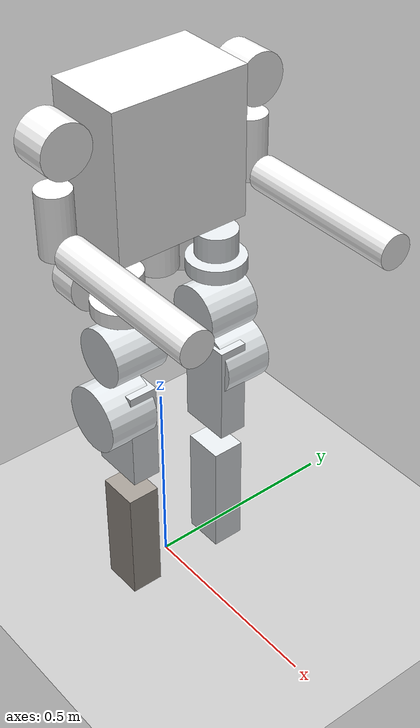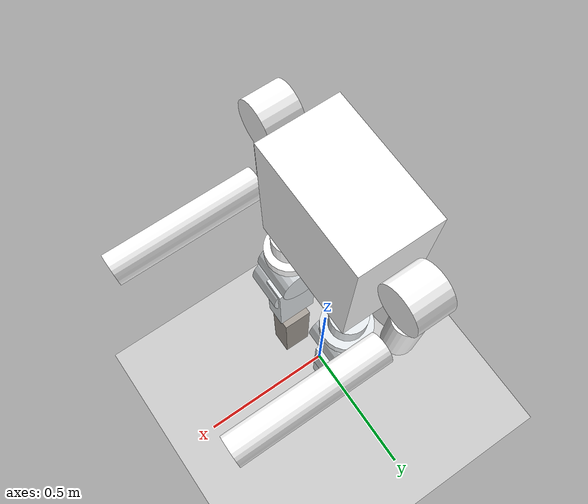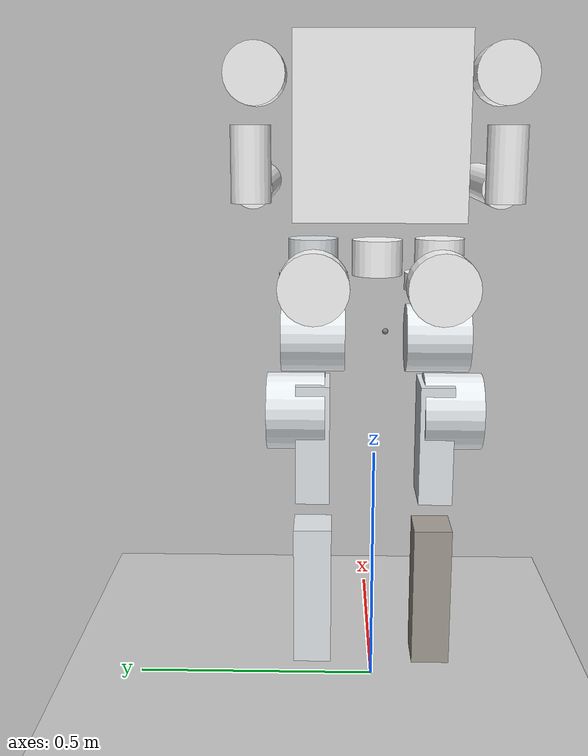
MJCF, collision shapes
<mujoco model="humanoid-legged-description">
  <compiler angle="radian" meshdir="../meshes/"/>
  <size njmax="500" nconmax="100" />
  <option timestep="0.001" iterations="50" solver="PGS" gravity="0 0 -9.81" noslip_iterations="20">
  </option>
  <default>
      <geom contype="1" conaffinity="1" condim="1" solref="0.005 1"/>
  </default>
  <visual>
      <quality shadowsize="4096"/>
      <global realtime="1"/>
  </visual>
  <default>
        <light castshadow="false" />
        <geom rgba="0.784 0.784 0.784 1"/>
    <default class="visual">
      <geom contype="0" conaffinity="0" group="1" type="mesh"/>
    </default>
    <default class="collision">
      <geom contype="1" conaffinity="1" friction="1.0 0.3 0.3" margin="0.001" group="0"/>
    </default>
        <joint damping="1.0" frictionloss="0" armature="0.01"/>
    </default>

  <asset>
    <mesh name="base_link"          file="base_link.STL"/>
    <mesh name="Link_hip_r_roll"    file="Hip_R_Roll_Link.STL"/>
    <mesh name="Link_hip_r_yaw"     file="Hip_R_Yaw_Link.STL"/>
    <mesh name="Link_hip_r_pitch"   file="Hip_R_Pitch_Link.STL"/>
    <mesh name="Link_knee_r_pitch"  file="Knee_R_Pitch_Link.STL"/>
    <mesh name="Link_ankle_r_pitch" file="Ankle_R_Pitch_Link.STL"/>
    <mesh name="Link_ankle_r_roll"  file="Ankle_R_Roll_Link.STL"/>
    <mesh name="Link_hip_l_roll"    file="Hip_L_Roll_Link.STL"/>
    <mesh name="Link_hip_l_yaw"     file="Hip_L_Yaw_Link.STL"/>
    <mesh name="Link_hip_l_pitch"   file="Hip_L_Pitch_Link.STL"/>
    <mesh name="Link_knee_l_pitch"  file="Knee_L_Pitch_Link.STL"/>
    <mesh name="Link_ankle_l_pitch" file="Ankle_L_Pitch_Link.STL"/>
    <mesh name="Link_ankle_l_roll"  file="Ankle_L_Roll_Link.STL"/>

      <texture type="skybox" builtin="gradient" rgb1="0.3 0.5 0.7" rgb2="0 0 0" width="512" height="512"/>
    <texture name="texplane" type="2d" builtin="checker" rgb1=".2 .3 .4" rgb2=".1 0.15 0.2"
            width="512" height="512" mark="cross" markrgb=".8 .8 .8"/>
    <texture name="texplane2" type="2d" builtin="checker" rgb1="1 0.3137 0.1843" rgb2="0.0 0.30196 0.38039"
            width="512" height="512" mark="cross" markrgb=".8 .8 .8"/>
    <texture name="block" type="2d" file="asset/block.png"/>
    <material name="block" texture="block" reflectance="0"  />

    <material name="matplane" reflectance="0." texture="texplane" texrepeat="1 1" texuniform="true"/>
    <material name="matplane2" reflectance="0.1" texture="texplane2" texrepeat="1 1" texuniform="true"/>

    <material name='obstacle'  rgba='0.9 0.6 0.2 1'/>
    <material name='visualgeom'  rgba='0.5 0.9 0.2 1'/>
    <material name='visualgeom2'  rgba='0.5 0.9 0.2 1'/>
  </asset>

  <worldbody>
    <light directional="false" cutoff="60" exponent="1" diffuse=".5 .5 .5" specular=".1 .1 .1" pos="0.5 0.1 0.8" dir="-0.5 -0.1 -0.8"/>
    <light directional="true" diffuse="0.7 0.7 0.7" specular="0.2 0.2 0.2" pos="0 0 5" dir="0 0 -1"/>
    <geom name="ground" type="plane" size="0 0 1" pos="0.001 0 0" quat="1 0 0 0" material="matplane" condim="3" contype="15" conaffinity='0' friction="1.2 0.8 0.8"/>

    <body name="base_link" pos="0 0 0.955" euler ="0 0 0">
      <freejoint name="float_base" />
      <inertial pos="0.027128 0.000293 0.10205" quat="1 0 0 0" mass="28" diaginertia="1.4945 1.222 1.0953"/>
      <geom class="visual" mesh="base_link" type="mesh" rgba="1 1 1 1"/>
      <geom class="collision" size="0.1 0.165 0.175" pos="0 0 0.2" type="box" rgba="1 1 1 1"/>
      <geom class="collision" size="0.06 0.045" pos="0.01 0.24 0.3" quat="0.707388 0 0.706825 0" type="cylinder" rgba="1 1 1 1"/>
      <geom class="collision" size="0.04 0.075" pos="0.01 0.25 0.13" type="cylinder" rgba="1 1 1 1"/>
      <geom class="collision" size="0.04 0.2" pos="0.26 0.25 0.08" quat="0.707388 0 0.706825 0" type="cylinder" rgba="1 1 1 1"/>
      <geom class="collision" size="0.06 0.045" pos="0.01 -0.24 0.3" quat="0.707388 0 0.706825 0" type="cylinder" rgba="1 1 1 1"/>
      <geom class="collision" size="0.04 0.075" pos="0.01 -0.25 0.13" type="cylinder" rgba="1 1 1 1"/>
      <geom class="collision" size="0.04 0.2" pos="0.26 -0.25 0.08" quat="0.707388 0 0.706825 0" type="cylinder" rgba="1 1 1 1"/>
      <geom class="collision" size="0.07 0.036" pos="-0.08 -0.125 -0.1" quat="0.707388 0 0.706825 0" type="cylinder" rgba="1 1 1 1"/>
      <geom class="collision" size="0.07 0.036" pos="-0.08 0.125 -0.1" quat="0.707388 0 0.706825 0" type="cylinder" rgba="1 1 1 1"/>
      <geom class="collision" size="0.05 0.035" pos="0 0 -0.05" type="cylinder" rgba="1 1 1 1"/>

      <body name="Hip_L_Roll_Link" pos="-0.042 0.1275 -0.097">
        <inertial pos="0.078109 0 0.024666" quat="0.0034095 0.814051 0.00396144 0.580769" mass="2.28" diaginertia="0.00399817 0.00375397 0.00244785"/>
        <joint name="Hip_L_Roll_Joint" pos="0 0 0" axis="1 0 0" range="-0.227 0.523" actuatorfrcrange="-200 200"/>
        <geom class="visual" mesh="Link_hip_l_roll" type="mesh" rgba="0.89804 0.91765 0.92941 1"/>
        <geom class="collision" size="0.07 0.0175" pos="0.09 0 -0.006" type="cylinder" rgba="0.89804 0.91765 0.92941 1"/>
        <geom class="collision" size="0.05 0.03" pos="0.09 0 0.05" type="cylinder" rgba="0.89804 0.91765 0.92941 1"/>

        <body name="Hip_L_Yaw_Link" pos="0.087 0 -0.0135">
          <inertial pos="0.000217 -0.004903 -0.085363" quat="0.999908 0.000719646 -0.0125494 0.00504253" mass="3.738" diaginertia="0.0088458 0.00823495 0.00450026"/>
          <joint name="Hip_L_Yaw_Joint" pos="0 0 0" axis="0 0 1" range="-0.5 0.65" actuatorfrcrange="-200 200"/>
          <geom class="visual" mesh="Link_hip_l_yaw" type="mesh" rgba="0.89804 0.91765 0.92941 1"/>
          <geom class="collision" size="0.07 0.065" pos="0 0 -0.11" quat="0.707388 0.706825 0 0" type="cylinder" rgba="0.89804 0.91765 0.92941 1"/>

          <body name="Hip_L_Pitch_Link" pos="0 0 -0.10595">
            <inertial pos="-7.7e-05 0.02564 -0.167614" quat="0.99923 0.0391185 -0.00304178 0.000485083" mass="6.22" diaginertia="0.0567306 0.0534788 0.0124466"/>
            <joint name="Hip_L_Pitch_Joint" pos="0 0 0" axis="0 1 0" range="-0.78 0.78" actuatorfrcrange="-200 200"/>
            <geom class="visual" mesh="Link_hip_l_pitch" type="mesh" rgba="0.89804 0.91765 0.92941 1"/>
            <geom class="collision" size="0.08 0.06" pos="0 0.035 -0.16" quat="0.707388 0.706825 0 0" type="cylinder" rgba="0.89804 0.91765 0.92941 1"/>
            <geom class="collision" size="0.065 0.035 0.125" pos="0 0 -0.22" type="box" rgba="0.89804 0.91765 0.92941 1"/>

            <body name="Knee_L_Pitch_Link" pos="0 0 -0.34">
              <inertial pos="-0.002029 -8.4e-05 -0.156302" quat="0.708888 -0.00197532 0.00439659 0.705305" mass="3.32" diaginertia="0.0301493 0.0297803 0.00193338"/>
              <joint name="Knee_L_Pitch_Joint" pos="0 0 0" axis="0 1 0" range="0 1.2" actuatorfrcrange="-200 200"/>
              <geom class="visual" mesh="Link_knee_l_pitch" type="mesh" rgba="0.89804 0.91765 0.92941 1"/>
              <geom class="collision" size="0.05 0.04 0.15" pos="0 0 -0.22" type="box" rgba="0.89804 0.91765 0.92941 1"/>

              <body name="Ankle_L_Pitch_Link" pos="0 0 -0.4">
                <inertial pos="0 0 0" quat="0.5 0.5 -0.5 0.5" mass="0.088" diaginertia="1.4e-05 8e-06 8e-06"/>
                <joint name="Ankle_L_Pitch_Joint" pos="0 0 0" axis="0 1 0" range="-0.78 0.57" actuatorfrcrange="-200 200"/>
                <geom class="visual" mesh="Link_ankle_l_pitch" type="mesh" rgba="0.89804 0.91765 0.92941 1"/>

                <body name="Ankle_L_Roll_Link">
                  <inertial pos="0.006111 0 -0.039985" quat="0 0.749246 0 0.662292" mass="0.758" diaginertia="0.00396797 0.003773 0.000717025"/>
                  <joint name="Ankle_L_Roll_Joint" pos="0 0 0" axis="1 0 0" range="-0.35 0.35" actuatorfrcrange="-200 200"/>
                  <geom class="visual" mesh="Link_ankle_l_roll" type="mesh" rgba="0.89804 0.91765 0.92941 1"/>
                  <geom name="left_sole" class="collision" condim="4" friction="1 1 1" size="0.125 0.05 0.0125" pos="0.037 0 -0.06" type="box" rgba="0.89804 0.91765 0.92941 1"/>
                  <site name="l_foot_toe" pos="0.15484 0 -0.0725"/>
                  <site name="l_foot_heel" pos="-0.08326  0 -0.0725"/>
                </body>
              </body>
            </body>
          </body>
        </body>
      </body>

      <body name="Hip_R_Roll_Link" pos="-0.042 -0.1275 -0.097">
        <inertial pos="0.078109 0 0.024666" quat="0.0034095 0.814051 0.00396144 0.580769" mass="2.28" diaginertia="0.00399817 0.00375397 0.00244785"/>
        <joint name="Hip_R_Roll_Joint" pos="0 0 0" axis="1 0 0" range="-0.52 0.23" actuatorfrcrange="-200 200"/>
        <geom class="visual" mesh="Link_hip_r_roll" type="mesh" rgba="1 1 1 1"/>
        <geom class="collision" size="0.07 0.0175" pos="0.09 0 -0.006" type="cylinder" rgba="1 1 1 1"/>
        <geom class="collision" size="0.05 0.03" pos="0.09 0 0.05" type="cylinder" rgba="1 1 1 1"/>

        <body name="Hip_R_Yaw_Link" pos="0.087 0 -0.0135">
          <inertial pos="0.000217 0.004903 -0.085363" quat="0.999908 -0.000719646 -0.0125494 -0.00504253" mass="4.801" diaginertia="0.0088458 0.00823495 0.00450026"/>
          <joint name="Hip_R_Yaw_Joint" pos="0 0 0" axis="0 0 1" range="-0.65 0.5" actuatorfrcrange="-200 200"/>
          <geom class="visual" mesh="Link_hip_r_yaw" type="mesh" rgba="0.89804 0.91765 0.92941 1"/>
          <geom class="collision" size="0.07 0.065" pos="0 0 -0.11" quat="0.707388 0.706825 0 0" type="cylinder" rgba="0.89804 0.91765 0.92941 1"/>

          <body name="Hip_R_Pitch_Link" pos="0 0 -0.10595">
            <inertial pos="-7e-06 -0.02564 -0.167614" quat="0.99923 -0.0391185 -0.00304178 -0.000485083" mass="6.22" diaginertia="0.0567306 0.0534788 0.0124466"/>
            <joint name="Hip_R_Pitch_Joint" pos="0 0 0" axis="0 1 0" range="-0.78 0.78" actuatorfrcrange="-200 200"/>
            <geom class="visual" mesh="Link_hip_r_pitch" type="mesh" rgba="0.89804 0.91765 0.92941 1"/>
            <geom class="collision" size="0.08 0.06" pos="0 -0.035 -0.16" quat="0.707388 0.706825 0 0" type="cylinder" rgba="0.89804 0.91765 0.92941 1"/>
            <geom class="collision" size="0.065 0.035 0.125" pos="0 0 -0.22" type="box" rgba="0.89804 0.91765 0.92941 1"/>

            <body name="Knee_R_Pitch_Link" pos="0 0 -0.34">
              <inertial pos="-0.002029 8.4e-05 -0.156302" quat="0.706974 0.00196317 -0.00440215 0.707223" mass="3.32" diaginertia="0.0301493 0.0297803 0.00193338"/>
              <joint name="Knee_R_Pitch_Joint" pos="0 0 0" axis="0 1 0" range="0 1.2" actuatorfrcrange="-200 200"/>
              <geom class="visual" mesh="Link_knee_r_pitch" type="mesh" rgba="0.89804 0.91765 0.92941 1"/>
              <geom class="collision" size="0.05 0.04 0.15" pos="0 0 -0.22" type="box" rgba="0.64706 0.61961 0.58824 1"/>

              <body name="Ankle_R_Pitch_Link" pos="0 0 -0.4">
                <inertial pos="0 0 0" mass="0.088" diaginertia="8e-06 8e-06 1.4e-06"/>
                <joint name="Ankle_R_Pitch_Joint" pos="0 0 0" axis="0 1 0" range="-0.78 0.57" actuatorfrcrange="-200 200"/>
                <geom class="visual" mesh="Link_ankle_r_pitch" type="mesh" rgba="0.89804 0.91765 0.92941 1"/>

                <body name="Ankle_R_Roll_Link">
                  <inertial pos="0.006111 0 -0.039985" quat="0 0.749246 0 0.662292" mass="0.758" diaginertia="0.00396797 0.003773 0.000717025"/>
                  <joint name="Ankle_R_Roll_Joint" pos="0 0 0" axis="1 0 0" range="-0.35 0.35" actuatorfrcrange="-200 200"/>
                  <geom class="visual" mesh="Link_ankle_r_roll" type="mesh" rgba="0.89804 0.91765 0.92941 1"/>
                  <geom name="right_sole" class="collision" condim="4" friction="1 1 1" size="0.125 0.05 0.0125" pos="0.037 0 -0.06" type="box" rgba="0.89804 0.91765 0.92941 1"/>
                  <site name="r_foot_toe" pos="0.15484 0 -0.0725"/>
                  <site name="r_foot_heel" pos="-0.08326  0 -0.0725"/>
                </body>
              </body>
            </body>
          </body>
        </body>
      </body>

      <body name="site" pos="-0.3605 0 -0.133">
        <site name="imu" pos="0 0 0"/>
      </body>

    </body>
  </worldbody>

<actuator>
  <motor gear="1" joint="Hip_L_Roll_Joint"      name="leg_l1_motor" ctrllimited="true"  ctrlrange='-200 200'/>
  <motor gear="1" joint="Hip_L_Yaw_Joint"       name="leg_l2_motor" ctrllimited="true"  ctrlrange='-200 200'/>
  <motor gear="1" joint="Hip_L_Pitch_Joint"     name="leg_l3_motor" ctrllimited="true"  ctrlrange='-300 300'/>
  <motor gear="1" joint="Knee_L_Pitch_Joint"    name="leg_l4_motor" ctrllimited="true"  ctrlrange='-300 300'/>
  <motor gear="1" joint="Ankle_L_Pitch_Joint"   name="leg_l5_motor" ctrllimited="true"  ctrlrange='-200 200'/>
  <motor gear="1" joint="Ankle_L_Roll_Joint"    name="leg_l6_motor" ctrllimited="true"  ctrlrange='-200 200'/>
  <motor gear="1" joint="Hip_R_Roll_Joint"      name="leg_r1_motor" ctrllimited="true"  ctrlrange='-200 200'/>
  <motor gear="1" joint="Hip_R_Yaw_Joint"       name="leg_r2_motor" ctrllimited="true"  ctrlrange='-200 200'/>
  <motor gear="1" joint="Hip_R_Pitch_Joint"     name="leg_r3_motor" ctrllimited="true"  ctrlrange='-300 300'/>
  <motor gear="1" joint="Knee_R_Pitch_Joint"    name="leg_r4_motor" ctrllimited="true"  ctrlrange='-300 300'/>
  <motor gear="1" joint="Ankle_R_Pitch_Joint"   name="leg_r5_motor" ctrllimited="true"  ctrlrange='-200 200'/>
  <motor gear="1" joint="Ankle_R_Roll_Joint"    name="leg_r6_motor" ctrllimited="true"  ctrlrange='-200 200'/>
</actuator>

<sensor>
  <jointpos name="leg_l1_pos" joint="Hip_L_Roll_Joint"/>
  <jointpos name="leg_l2_pos" joint="Hip_L_Yaw_Joint"/>
  <jointpos name="leg_l3_pos" joint="Hip_L_Pitch_Joint"/>
  <jointpos name="leg_l4_pos" joint="Knee_L_Pitch_Joint"/>
  <jointpos name="leg_l5_pos" joint="Ankle_L_Pitch_Joint"/>
  <jointpos name="leg_l6_pos" joint="Ankle_L_Roll_Joint"/>

  <jointpos name="leg_r1_pos" joint="Hip_R_Roll_Joint"/>
  <jointpos name="leg_r2_pos" joint="Hip_R_Yaw_Joint"/>
  <jointpos name="leg_r3_pos" joint="Hip_R_Pitch_Joint"/>
  <jointpos name="leg_r4_pos" joint="Knee_R_Pitch_Joint"/>
  <jointpos name="leg_r5_pos" joint="Ankle_R_Pitch_Joint"/>
  <jointpos name="leg_r6_pos" joint="Ankle_R_Roll_Joint"/>

  <jointvel name="leg_l1_vel" joint="Hip_L_Roll_Joint"/>
  <jointvel name="leg_l2_vel" joint="Hip_L_Yaw_Joint"/>
  <jointvel name="leg_l3_vel" joint="Hip_L_Pitch_Joint"/>
  <jointvel name="leg_l4_vel" joint="Knee_L_Pitch_Joint"/>
  <jointvel name="leg_l5_vel" joint="Ankle_L_Pitch_Joint"/>
  <jointvel name="leg_l6_vel" joint="Ankle_L_Roll_Joint"/>

  <jointvel name="leg_r1_vel" joint="Hip_R_Roll_Joint"/>
  <jointvel name="leg_r2_vel" joint="Hip_R_Yaw_Joint"/>
  <jointvel name="leg_r3_vel" joint="Hip_R_Pitch_Joint"/>
  <jointvel name="leg_r4_vel" joint="Knee_R_Pitch_Joint"/>
  <jointvel name="leg_r5_vel" joint="Ankle_R_Pitch_Joint"/>
  <jointvel name="leg_r6_vel" joint="Ankle_R_Roll_Joint"/>

  <accelerometer name="BodyAcc" site="imu"/>
  <velocimeter name="BodyVel" site="imu"/>
  <gyro name="BodyGyro" site="imu"/>
  <framepos name="BodyPos" objtype="site" objname="imu"/>
  <framequat name="BodyQuat" objtype="site" objname="imu"/>

  <framequat name="l_foot_Quat" objtype="site" objname="l_foot_toe"/>
  <velocimeter name="l_foot_toe_vel" site="l_foot_toe"/>
  <velocimeter name="l_foot_heel_vel" site="l_foot_heel"/>
  <framequat name="r_foot_Quat" objtype="site" objname="r_foot_toe"/>
  <velocimeter name="r_foot_toe_vel" site="r_foot_toe"/>
  <velocimeter name="r_foot_heel_vel" site="r_foot_heel"/>
</sensor>

  <keyframe>
	  <key name="home"
	     qpos=" 0 0 1.5
	            1 0 0 0
	            0.0 0.0 0.0 0.0 0.0 0.0
	            0.0 0.0 0.0 0.0 0.0 0.0"
	     />

   </keyframe>
</mujoco>
